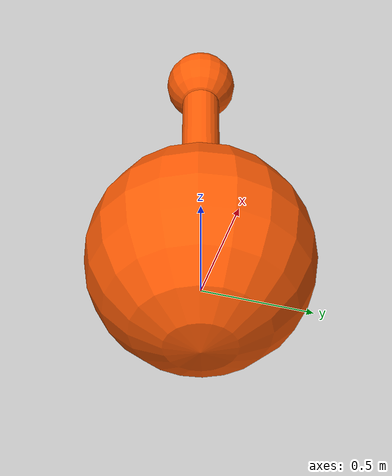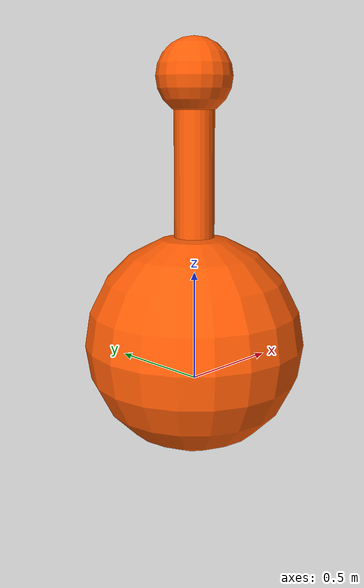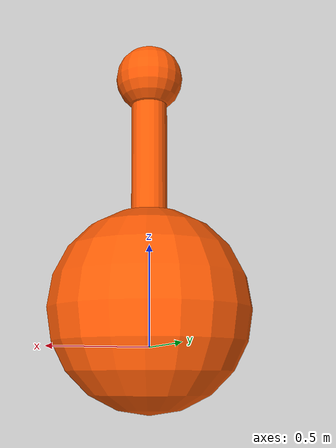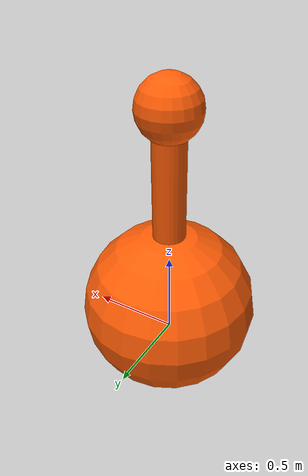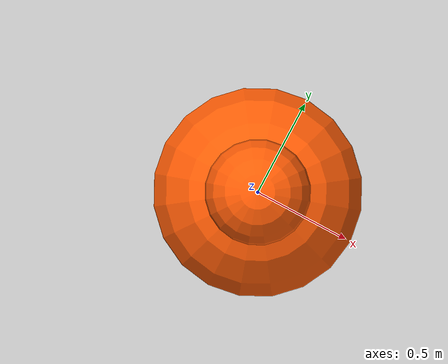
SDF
<?xml version="1.0"?>
<sdf version="1.9">
  <model name="codex_round_buoy_orange">
    <static>true</static>
    <link name="link">
      <collision name="collision_outer">
        <pose>0 0 0.62 0 0 0</pose>
        <geometry><cylinder><radius>0.50</radius><length>1.7</length></cylinder></geometry>
      </collision>
      <visual name="float">
        <pose>0 0 0.18 0 0 0</pose>
        <geometry><sphere><radius>0.50</radius></sphere></geometry>
        <material><ambient>0.75 0.18 0.01 1</ambient><diffuse>1.0 0.36 0.02 1</diffuse></material>
      </visual>
      <visual name="reflective_band">
        <pose>0 0 0.50 0 0 0</pose>
        <geometry><cylinder><radius>0.25</radius><length>0.13</length></cylinder></geometry>
        <material><ambient>0.8 0.8 0.8 1</ambient><diffuse>1 1 1 1</diffuse></material>
      </visual>
      <visual name="mast">
        <pose>0 0 0.91 0 0 0</pose>
        <geometry><cylinder><radius>0.09</radius><length>0.82</length></cylinder></geometry>
        <material><ambient>0.75 0.18 0.01 1</ambient><diffuse>1.0 0.36 0.02 1</diffuse></material>
      </visual>
      <visual name="topmark">
        <pose>0 0 1.37 0 0 0</pose>
        <geometry><sphere><radius>0.17</radius></sphere></geometry>
        <material><ambient>0.75 0.18 0.01 1</ambient><diffuse>1.0 0.36 0.02 1</diffuse></material>
      </visual>
    </link>
  </model>
</sdf>
